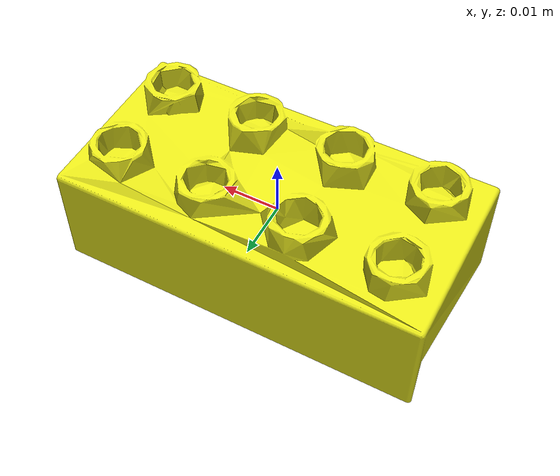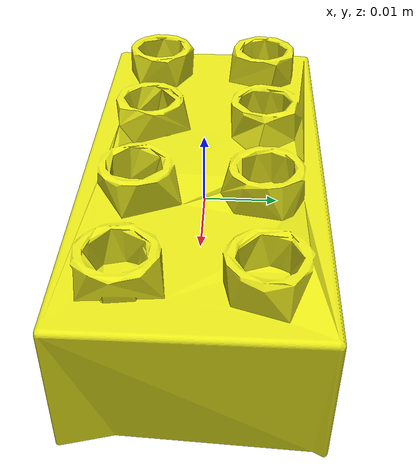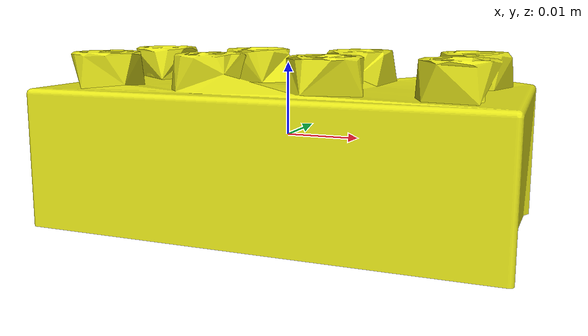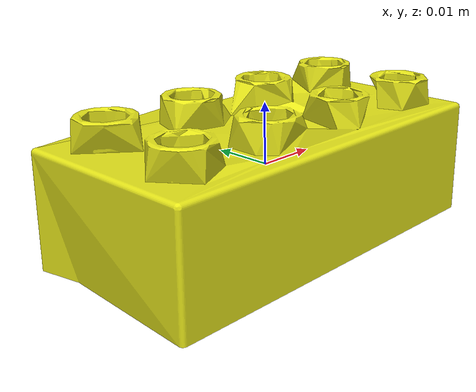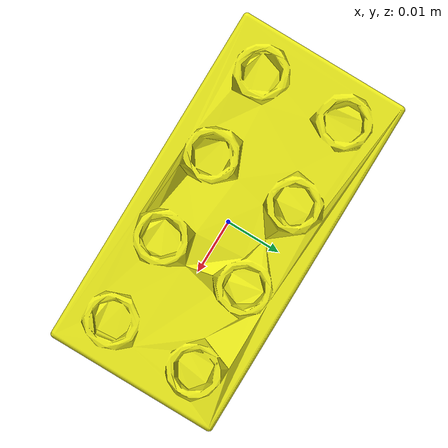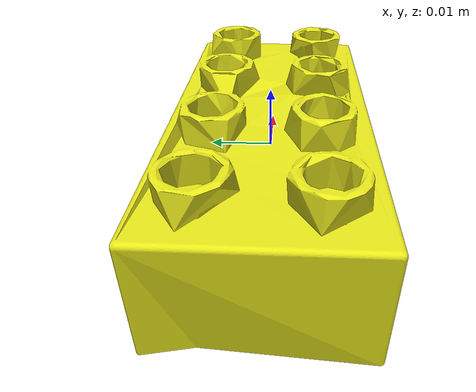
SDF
<?xml version="1.0"?>
<sdf version="1.9">
  <model name="lego_4x2_yellow">
    <link name="link">
      <inertial>
        <mass>0.010</mass>
        <inertia>
          <ixx>5.253e-6</ixx><iyy>1.5694e-5</iyy><izz>1.6441e-5</izz>
          <ixy>0</ixy><ixz>0</ixz><iyz>0</iyz>
        </inertia>
      </inertial>
      <collision name="collision">
        <geometry>
          <mesh><uri>model://meshes/4x2_base_simplified.obj</uri><scale>1 1 1</scale></mesh>
        </geometry>
      </collision>
      <visual name="visual">
        <geometry>
          <mesh><uri>model://meshes/4x2_base_simplified.obj</uri><scale>1 1 1</scale></mesh>
        </geometry>
        <material>
          <ambient>0.9 0.9 0.1 1</ambient>
          <diffuse>0.9 0.9 0.1 1</diffuse>
        </material>
      </visual>
    </link>
  </model>
</sdf>
